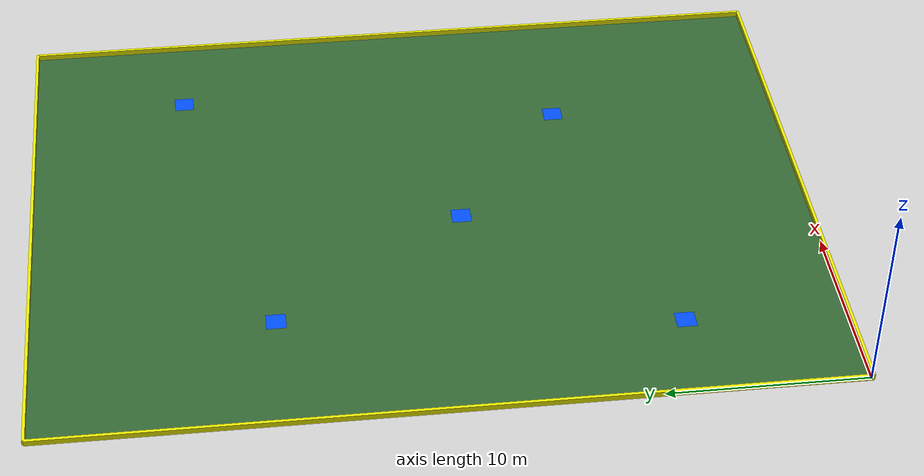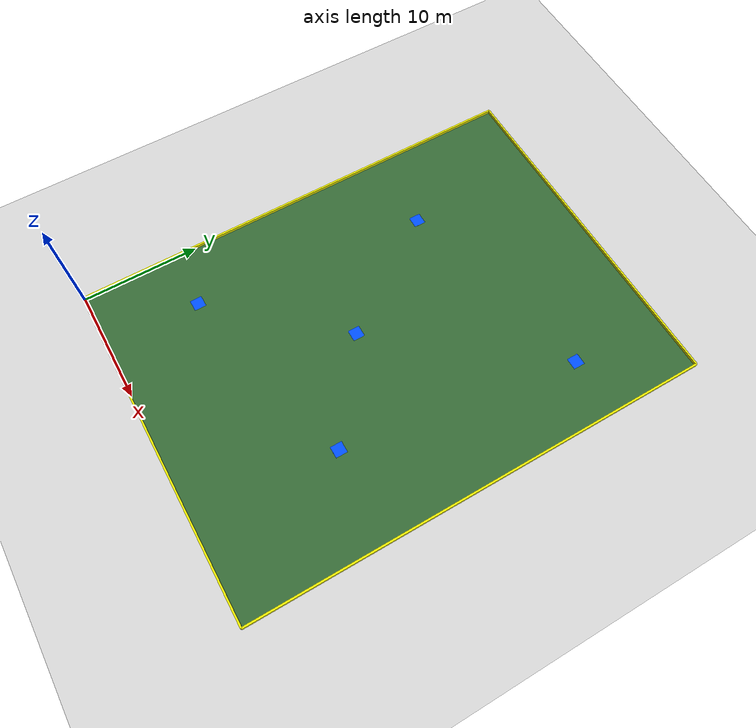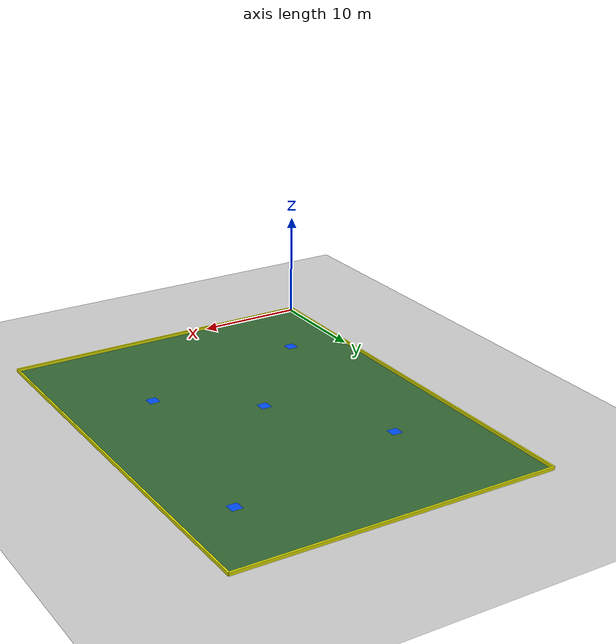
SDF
<?xml version="1.0"?>
<sdf version="1.6">
  <world name="search_field">

    <!-- ── Physics ─────────────────────────────────────────── -->
    <physics name="ode_physics" type="ode">
      <real_time_update_rate>1000</real_time_update_rate>
      <max_step_size>0.001</max_step_size>
      <real_time_factor>1</real_time_factor>
      <ode>
        <solver>
          <type>quick</type>
          <iters>150</iters>
          <sor>1.4</sor>
        </solver>
        <constraints>
          <cfm>0.0</cfm>
          <erp>0.2</erp>
          <contact_max_correcting_vel>2000.0</contact_max_correcting_vel>
          <contact_surface_layer>0.001</contact_surface_layer>
        </constraints>
      </ode>
    </physics>

    <!-- ── Lighting ────────────────────────────────────────── -->
    <light name="sun" type="directional">
      <cast_shadows>true</cast_shadows>
      <pose>15 20 30 0 0 0</pose>
      <diffuse>0.9 0.9 0.9 1</diffuse>
      <specular>0.3 0.3 0.3 1</specular>
      <direction>-0.3 0.1 -0.9</direction>
    </light>

    <scene>
      <ambient>0.6 0.6 0.6 1</ambient>
      <background>0.4 0.6 0.85 1</background>
      <shadows>true</shadows>
    </scene>

    <!-- ── Ground plane ─────────────────────────────────────── -->
    <model name="ground_plane">
      <static>true</static>
      <link name="link">
        <collision name="collision">
          <geometry><plane><normal>0 0 1</normal></plane></geometry>
          <surface>
            <friction><ode><mu>100</mu><mu2>50</mu2></ode></friction>
          </surface>
        </collision>
        <visual name="visual">
          <cast_shadows>false</cast_shadows>
          <geometry><plane><normal>0 0 1</normal><size>80 80</size></plane></geometry>
          <material>
            <script>
              <uri>file://media/materials/scripts/gazebo.material</uri>
              <name>Gazebo/Grey</name>
            </script>
          </material>
        </visual>
      </link>
    </model>

    <!-- ── Field floor (green mat inside boundary) ────────── -->
    <model name="field_floor">
      <static>true</static>
      <pose>15 20 0.001 0 0 0</pose>
      <link name="link">
        <visual name="visual">
          <cast_shadows>false</cast_shadows>
          <geometry><box><size>30 40 0.001</size></box></geometry>
          <material>
            <ambient>0.15 0.35 0.15 1</ambient>
            <diffuse>0.2 0.4 0.2 1</diffuse>
          </material>
        </visual>
      </link>
    </model>

    <!-- Bottom wall (Y=0) -->
    <model name="wall_bottom">
      <static>true</static>
      <pose>15 -0.075 0.15 0 0 0</pose>
      <link name="link">
        <collision name="collision">
          <geometry><box><size>30.15 0.15 0.3</size></box></geometry>
        </collision>
        <visual name="visual">
          <geometry><box><size>30.15 0.15 0.3</size></box></geometry>
          <material>
            <ambient>0.8 0.8 0.0 1</ambient>
            <diffuse>0.9 0.9 0.0 1</diffuse>
          </material>
        </visual>
      </link>
    </model>

    <!-- Top wall (Y=40) -->
    <model name="wall_top">
      <static>true</static>
      <pose>15 40.075 0.15 0 0 0</pose>
      <link name="link">
        <collision name="collision">
          <geometry><box><size>30.15 0.15 0.3</size></box></geometry>
        </collision>
        <visual name="visual">
          <geometry><box><size>30.15 0.15 0.3</size></box></geometry>
          <material>
            <ambient>0.8 0.8 0.0 1</ambient>
            <diffuse>0.9 0.9 0.0 1</diffuse>
          </material>
        </visual>
      </link>
    </model>

    <!-- Left wall (X=0) -->
    <model name="wall_left">
      <static>true</static>
      <pose>-0.075 20 0.15 0 0 0</pose>
      <link name="link">
        <collision name="collision">
          <geometry><box><size>0.15 40.15 0.3</size></box></geometry>
        </collision>
        <visual name="visual">
          <geometry><box><size>0.15 40.15 0.3</size></box></geometry>
          <material>
            <ambient>0.8 0.8 0.0 1</ambient>
            <diffuse>0.9 0.9 0.0 1</diffuse>
          </material>
        </visual>
      </link>
    </model>

    <!-- Right wall (X=30) -->
    <model name="wall_right">
      <static>true</static>
      <pose>30.075 20 0.15 0 0 0</pose>
      <link name="link">
        <collision name="collision">
          <geometry><box><size>0.15 40.15 0.3</size></box></geometry>
        </collision>
        <visual name="visual">
          <geometry><box><size>0.15 40.15 0.3</size></box></geometry>
          <material>
            <ambient>0.8 0.8 0.0 1</ambient>
            <diffuse>0.9 0.9 0.0 1</diffuse>
          </material>
        </visual>
      </link>
    </model>

    <model name="blue_target_1">
      <static>true</static>
      <pose>5 8 0.002 0 0 0</pose>
      <link name="link">
        <visual name="visual">
          <geometry><box><size>1 1 0.002</size></box></geometry>
          <material>
            <ambient>0.0 0.2 0.8 1</ambient>
            <diffuse>0.0 0.3 0.95 1</diffuse>
          </material>
        </visual>
      </link>
    </model>

    <model name="blue_target_2">
      <static>true</static>
      <pose>14 18 0.002 0 0 0</pose>
      <link name="link">
        <visual name="visual">
          <geometry><box><size>1 1 0.002</size></box></geometry>
          <material>
            <ambient>0.0 0.2 0.8 1</ambient>
            <diffuse>0.0 0.3 0.95 1</diffuse>
          </material>
        </visual>
      </link>
    </model>

    <model name="blue_target_3">
      <static>true</static>
      <pose>25 32 0.002 0 0 0</pose>
      <link name="link">
        <visual name="visual">
          <geometry><box><size>1 1 0.002</size></box></geometry>
          <material>
            <ambient>0.0 0.2 0.8 1</ambient>
            <diffuse>0.0 0.3 0.95 1</diffuse>
          </material>
        </visual>
      </link>
    </model>

    <model name="blue_target_4">
      <static>true</static>
      <pose>7 28 0.002 0 0 0</pose>
      <link name="link">
        <visual name="visual">
          <geometry><box><size>1 1 0.002</size></box></geometry>
          <material>
            <ambient>0.0 0.2 0.8 1</ambient>
            <diffuse>0.0 0.3 0.95 1</diffuse>
          </material>
        </visual>
      </link>
    </model>

    <model name="blue_target_5">
      <static>true</static>
      <pose>22 12 0.002 0 0 0</pose>
      <link name="link">
        <visual name="visual">
          <geometry><box><size>1 1 0.002</size></box></geometry>
          <material>
            <ambient>0.0 0.2 0.8 1</ambient>
            <diffuse>0.0 0.3 0.95 1</diffuse>
          </material>
        </visual>
      </link>
    </model>

    <!-- ── GUI camera starting view ─────────────────────────── -->
    <gui fullscreen="0">
      <camera name="user_camera">
        <pose>15 -10 25 0 0.7 1.5708</pose>
        <view_controller>orbit</view_controller>
      </camera>
    </gui>

  </world>
</sdf>
